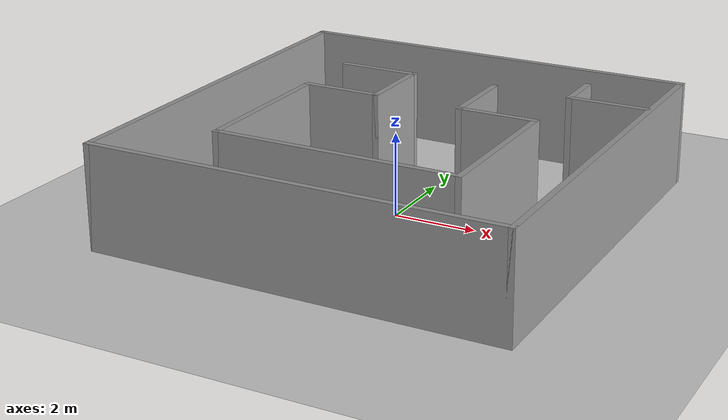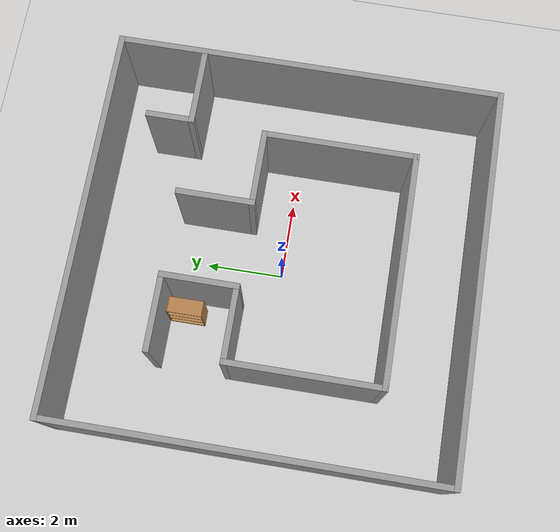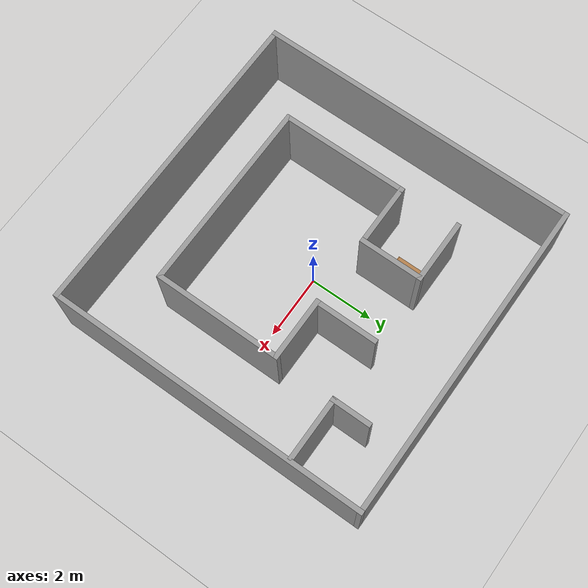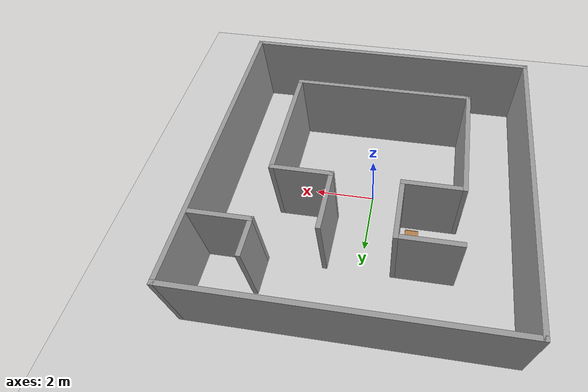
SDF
<sdf version="1.6">
 <world name="default">
  <light name="sun" type="directional">
   <pose>0 0 10 0 -0 0</pose>
   <diffuse>0.8 0.8 0.8 1</diffuse>
   <specular>0.2 0.2 0.2 1</specular>
   <attenuation>
    <range>1000</range>
    <constant>0.9</constant>
    <linear>0.01</linear>
    <quadratic>0.001</quadratic>
   </attenuation>
   <direction>-0.5 0.1 -0.9</direction>
  </light>
  <model name="ground_plane">
   <static>1</static>
   <link name="link">
    <collision name="collision">
     <geometry><plane><normal>0 0 1</normal><size>100 100</size></plane></geometry>
     <surface>
      <contact><collide_bitmask>65535</collide_bitmask></contact>
      <friction><ode><mu>100</mu><mu2>50</mu2></ode></friction>
     </surface>
    </collision>
    <visual name="visual">
     <cast_shadows>0</cast_shadows>
     <geometry><plane><normal>0 0 1</normal><size>100 100</size></plane></geometry>
     <material>
      <script><uri>file://media/materials/scripts/gazebo.material</uri><name>Gazebo/Grey</name></script>
     </material>
    </visual>
   </link>
  </model>
  <gravity>0 0 -9.8</gravity>
  <magnetic_field>6e-06 2.3e-05 -4.2e-05</magnetic_field>
  <atmosphere type="adiabatic"/>
  <physics name="default_physics" default="0" type="ode">
   <max_step_size>0.001</max_step_size>
   <real_time_factor>1</real_time_factor>
   <real_time_update_rate>1000</real_time_update_rate>
  </physics>
  <scene><ambient>0.4 0.4 0.4 1</ambient><background>0.7 0.7 0.7 1</background><shadows>1</shadows></scene>
  <audio><device>default</device></audio>
  <spherical_coordinates>
   <surface_model>EARTH_WGS84</surface_model>
   <latitude_deg>0</latitude_deg>
   <longitude_deg>0</longitude_deg>
   <elevation>0</elevation>
   <heading_deg>0</heading_deg>
  </spherical_coordinates>
  <model name="labirent">
   <pose>0.079364 0.10525 0 0 -0 0</pose>
   <link name="Wall_0">
    <collision name="Wall_0_Collision">
     <geometry><box><size>10 0.15 2.5</size></box></geometry>
     <pose>0 0 1.25 0 -0 0</pose>
    </collision>
    <visual name="Wall_0_Visual">
     <pose>0 0 1.25 0 -0 0</pose>
     <geometry><box><size>10 0.15 2.5</size></box></geometry>
     <material>
      <script><uri>file://media/materials/scripts/gazebo.material</uri><name>Gazebo/Grey</name></script>
      <ambient>1 1 1 1</ambient>
     </material>
     <meta><layer>0</layer></meta>
    </visual>
    <pose>-0 -4.925 0 0 -0 0</pose>
   </link>
   <link name="Wall_1">
    <collision name="Wall_1_Collision">
     <geometry><box><size>10 0.15 2.5</size></box></geometry>
     <pose>0 0 1.25 0 -0 0</pose>
    </collision>
    <visual name="Wall_1_Visual">
     <pose>0 0 1.25 0 -0 0</pose>
     <geometry><box><size>10 0.15 2.5</size></box></geometry>
     <material>
      <script><uri>file://media/materials/scripts/gazebo.material</uri><name>Gazebo/Grey</name></script>
      <ambient>1 1 1 1</ambient>
     </material>
     <meta><layer>0</layer></meta>
    </visual>
    <pose>4.925 0 0 0 -0 1.5708</pose>
   </link>
   <link name="Wall_11">
    <collision name="Wall_11_Collision">
     <geometry><box><size>6 0.15 2.5</size></box></geometry>
     <pose>0 0 1.25 0 -0 0</pose>
    </collision>
    <visual name="Wall_11_Visual">
     <pose>0 0 1.25 0 -0 0</pose>
     <geometry><box><size>6 0.15 2.5</size></box></geometry>
     <material>
      <script><uri>file://media/materials/scripts/gazebo.material</uri><name>Gazebo/Grey</name></script>
      <ambient>1 1 1 1</ambient>
     </material>
     <meta><layer>0</layer></meta>
    </visual>
    <pose>-0.011635 -3.01382 0 0 -0 0</pose>
   </link>
   <link name="Wall_13">
    <collision name="Wall_13_Collision">
     <geometry><box><size>4 0.15 2.5</size></box></geometry>
     <pose>0 0 1.25 0 -0 0</pose>
    </collision>
    <visual name="Wall_13_Visual">
     <pose>0 0 1.25 0 -0 0</pose>
     <geometry><box><size>4 0.15 2.5</size></box></geometry>
     <material>
      <script><uri>file://media/materials/scripts/gazebo.material</uri><name>Gazebo/Grey</name></script>
      <ambient>1 1 1 1</ambient>
     </material>
     <meta><layer>0</layer></meta>
    </visual>
    <pose>-2.93663 -1.08882 0 0 -0 1.5708</pose>
   </link>
   <link name="Wall_15">
    <collision name="Wall_15_Collision">
     <geometry><box><size>4 0.15 2.5</size></box></geometry>
     <pose>0 0 1.25 0 -0 0</pose>
    </collision>
    <visual name="Wall_15_Visual">
     <pose>0 0 1.25 0 -0 0</pose>
     <geometry><box><size>4 0.15 2.5</size></box></geometry>
     <material>
      <script><uri>file://media/materials/scripts/gazebo.material</uri><name>Gazebo/Grey</name></script>
      <ambient>1 1 1 1</ambient>
     </material>
     <meta><layer>0</layer></meta>
    </visual>
    <pose>2.91337 -1.08882 0 0 -0 1.5708</pose>
   </link>
   <link name="Wall_17">
    <collision name="Wall_17_Collision">
     <geometry><box><size>2 0.15 2.5</size></box></geometry>
     <pose>0 0 1.25 0 -0 0</pose>
    </collision>
    <visual name="Wall_17_Visual">
     <pose>0 0 1.25 0 -0 0</pose>
     <geometry><box><size>2 0.15 2.5</size></box></geometry>
     <material>
      <script><uri>file://media/materials/scripts/gazebo.material</uri><name>Gazebo/Grey</name></script>
      <ambient>1 1 1 1</ambient>
     </material>
     <meta><layer>0</layer></meta>
    </visual>
    <pose>-2.01164 0.83618 0 0 -0 0</pose>
   </link>
   <link name="Wall_19">
    <collision name="Wall_19_Collision">
     <geometry><box><size>2 0.15 2.5</size></box></geometry>
     <pose>0 0 1.25 0 -0 0</pose>
    </collision>
    <visual name="Wall_19_Visual">
     <pose>0 0 1.25 0 -0 0</pose>
     <geometry><box><size>2 0.15 2.5</size></box></geometry>
     <material>
      <script><uri>file://media/materials/scripts/gazebo.material</uri><name>Gazebo/Grey</name></script>
      <ambient>1 1 1 1</ambient>
     </material>
     <meta><layer>0</layer></meta>
    </visual>
    <pose>1.98836 0.83618 0 0 -0 3.14159</pose>
   </link>
   <link name="Wall_2">
    <collision name="Wall_2_Collision">
     <geometry><box><size>10 0.15 2.5</size></box></geometry>
     <pose>0 0 1.25 0 -0 0</pose>
    </collision>
    <visual name="Wall_2_Visual">
     <pose>0 0 1.25 0 -0 0</pose>
     <geometry><box><size>10 0.15 2.5</size></box></geometry>
     <material>
      <script><uri>file://media/materials/scripts/gazebo.material</uri><name>Gazebo/Grey</name></script>
      <ambient>1 1 1 1</ambient>
     </material>
     <meta><layer>0</layer></meta>
    </visual>
    <pose>-0 4.925 0 0 -0 3.14159</pose>
   </link>
   <link name="Wall_21">
    <collision name="Wall_21_Collision">
     <geometry><box><size>2 0.15 2.5</size></box></geometry>
     <pose>0 0 1.25 0 -0 0</pose>
    </collision>
    <visual name="Wall_21_Visual">
     <pose>0 0 1.25 0 -0 0</pose>
     <geometry><box><size>2 0.15 2.5</size></box></geometry>
     <material>
      <script><uri>file://media/materials/scripts/gazebo.material</uri><name>Gazebo/Grey</name></script>
      <ambient>1 1 1 1</ambient>
     </material>
     <meta><layer>0</layer></meta>
    </visual>
    <pose>-1.08664 1.76118 0 0 -0 1.5708</pose>
   </link>
   <link name="Wall_23">
    <collision name="Wall_23_Collision">
     <geometry><box><size>2 0.15 2.5</size></box></geometry>
     <pose>0 0 1.25 0 -0 0</pose>
    </collision>
    <visual name="Wall_23_Visual">
     <pose>0 0 1.25 0 -0 0</pose>
     <geometry><box><size>2 0.15 2.5</size></box></geometry>
     <material>
      <script><uri>file://media/materials/scripts/gazebo.material</uri><name>Gazebo/Grey</name></script>
      <ambient>1 1 1 1</ambient>
     </material>
     <meta><layer>0</layer></meta>
    </visual>
    <pose>1.06336 1.76118 0 0 -0 1.5708</pose>
   </link>
   <link name="Wall_25">
    <collision name="Wall_25_Collision">
     <geometry><box><size>2 0.15 2.5</size></box></geometry>
     <pose>0 0 1.25 0 -0 0</pose>
    </collision>
    <visual name="Wall_25_Visual">
     <pose>0 0 1.25 0 -0 0</pose>
     <geometry><box><size>2 0.15 2.5</size></box></geometry>
     <material>
      <script><uri>file://media/materials/scripts/gazebo.material</uri><name>Gazebo/Grey</name></script>
      <ambient>1 1 1 1</ambient>
     </material>
     <meta><layer>0</layer></meta>
    </visual>
    <pose>-2.01164 2.68618 0 0 -0 3.14159</pose>
   </link>
   <link name="Wall_27">
    <collision name="Wall_27_Collision">
     <geometry><box><size>2 0.15 2.5</size></box></geometry>
     <pose>0 0 1.25 0 -0 0</pose>
    </collision>
    <visual name="Wall_27_Visual">
     <pose>0 0 1.25 0 -0 0</pose>
     <geometry><box><size>2 0.15 2.5</size></box></geometry>
     <material>
      <script><uri>file://media/materials/scripts/gazebo.material</uri><name>Gazebo/Grey</name></script>
      <ambient>1 1 1 1</ambient>
     </material>
     <meta><layer>0</layer></meta>
    </visual>
    <pose>3.90828 2.72256 0 0 -0 3.14159</pose>
   </link>
   <link name="Wall_29">
    <collision name="Wall_29_Collision">
     <geometry><box><size>1.25 0.15 2.5</size></box></geometry>
     <pose>0 0 1.25 0 -0 0</pose>
    </collision>
    <visual name="Wall_29_Visual">
     <pose>0 0 1.25 0 -0 0</pose>
     <geometry><box><size>1.25 0.15 2.5</size></box></geometry>
     <material>
      <script><uri>file://media/materials/scripts/gazebo.material</uri><name>Gazebo/Grey</name></script>
      <ambient>1 1 1 1</ambient>
     </material>
     <meta><layer>0</layer></meta>
    </visual>
    <pose>2.98328 3.27256 0 0 -0 1.5708</pose>
   </link>
   <link name="Wall_3">
    <collision name="Wall_3_Collision">
     <geometry><box><size>10 0.15 2.5</size></box></geometry>
     <pose>0 0 1.25 0 -0 0</pose>
    </collision>
    <visual name="Wall_3_Visual">
     <pose>0 0 1.25 0 -0 0</pose>
     <geometry><box><size>10 0.15 2.5</size></box></geometry>
     <material>
      <script><uri>file://media/materials/scripts/gazebo.material</uri><name>Gazebo/Grey</name></script>
      <ambient>1 1 1 1</ambient>
     </material>
     <meta><layer>0</layer></meta>
    </visual>
    <pose>-4.925 0 0 0 -0 -1.5708</pose>
   </link>
   <static>1</static>
  </model>
  <model name="bookshelf">
   <static>1</static>
   <link name="link">
    <inertial><mass>1</mass></inertial>
    <collision name="back">
     <pose>0 0.005 0.6 0 -0 0</pose>
     <geometry><box><size>0.9 0.01 1.2</size></box></geometry>
    </collision>
    <visual name="visual1">
     <pose>0 0.005 0.6 0 -0 0</pose>
     <geometry><box><size>0.9 0.01 1.2</size></box></geometry>
     <material>
      <script><uri>file://media/materials/scripts/gazebo.material</uri><name>Gazebo/Wood</name></script>
     </material>
    </visual>
    <collision name="left_side">
     <pose>0.45 -0.195 0.6 0 -0 0</pose>
     <geometry><box><size>0.02 0.4 1.2</size></box></geometry>
    </collision>
    <visual name="visual2">
     <pose>0.45 -0.195 0.6 0 -0 0</pose>
     <geometry><box><size>0.02 0.4 1.2</size></box></geometry>
     <material>
      <script><uri>file://media/materials/scripts/gazebo.material</uri><name>Gazebo/Wood</name></script>
     </material>
    </visual>
    <collision name="right_side">
     <pose>-0.45 -0.195 0.6 0 -0 0</pose>
     <geometry><box><size>0.02 0.4 1.2</size></box></geometry>
    </collision>
    <visual name="visual3">
     <pose>-0.45 -0.195 0.6 0 -0 0</pose>
     <geometry><box><size>0.02 0.4 1.2</size></box></geometry>
     <material>
      <script><uri>file://media/materials/scripts/gazebo.material</uri><name>Gazebo/Wood</name></script>
     </material>
    </visual>
    <collision name="bottom">
     <pose>0 -0.195 0.03 0 -0 0</pose>
     <geometry><box><size>0.88 0.4 0.06</size></box></geometry>
    </collision>
    <visual name="visual4">
     <pose>0 -0.195 0.03 0 -0 0</pose>
     <geometry><box><size>0.88 0.4 0.06</size></box></geometry>
     <material>
      <script><uri>file://media/materials/scripts/gazebo.material</uri><name>Gazebo/Wood</name></script>
     </material>
    </visual>
    <collision name="top">
     <pose>0 -0.195 1.19 0 -0 0</pose>
     <geometry><box><size>0.88 0.4 0.02</size></box></geometry>
    </collision>
    <visual name="visual5">
     <pose>0 -0.195 1.19 0 -0 0</pose>
     <geometry><box><size>0.88 0.4 0.02</size></box></geometry>
     <material>
      <script><uri>file://media/materials/scripts/gazebo.material</uri><name>Gazebo/Wood</name></script>
     </material>
    </visual>
    <collision name="low_shelf">
     <pose>0 -0.195 0.43 0 -0 0</pose>
     <geometry><box><size>0.88 0.4 0.02</size></box></geometry>
    </collision>
    <visual name="visual6">
     <pose>0 -0.195 0.43 0 -0 0</pose>
     <geometry><box><size>0.88 0.4 0.02</size></box></geometry>
     <material>
      <script><uri>file://media/materials/scripts/gazebo.material</uri><name>Gazebo/Wood</name></script>
     </material>
    </visual>
    <collision name="high_shelf">
     <pose>0 -0.195 0.8 0 -0 0</pose>
     <geometry><box><size>0.88 0.4 0.02</size></box></geometry>
    </collision>
    <visual name="visual7">
     <pose>0 -0.195 0.8 0 -0 0</pose>
     <geometry><box><size>0.88 0.4 0.02</size></box></geometry>
     <material>
      <script><uri>file://media/materials/scripts/gazebo.material</uri><name>Gazebo/Wood</name></script>
     </material>
    </visual>
   </link>
   <pose>-1.25 2.25 0 0 0 -1.57</pose>
  </model>
 </world>
</sdf>
